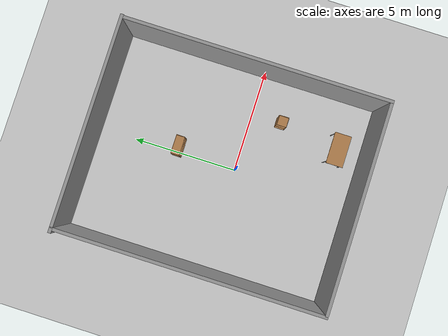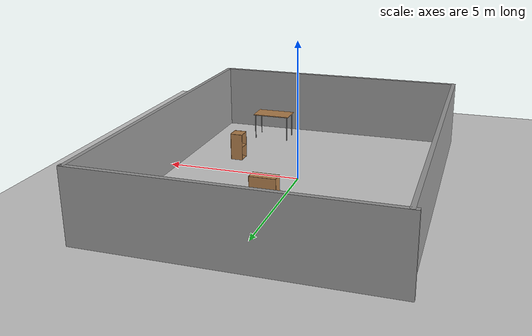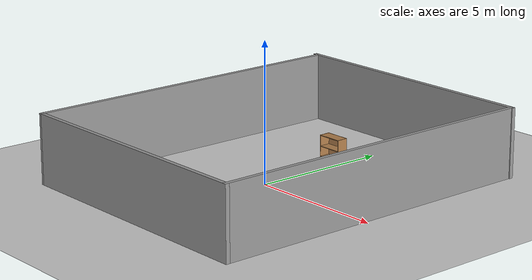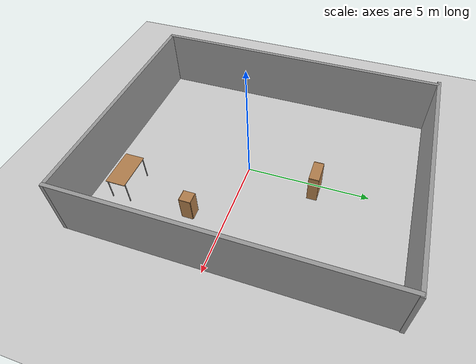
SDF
<sdf version="1.7">
 <world name="default">
  <light name="sun" type="directional">
   <pose>0 0 10 0 -0 0</pose>
   <diffuse>0.8 0.8 0.8 1</diffuse>
   <specular>0.2 0.2 0.2 1</specular>
   <attenuation>
    <range>1000</range>
    <constant>0.9</constant>
    <linear>0.01</linear>
    <quadratic>0.001</quadratic>
   </attenuation>
   <direction>-0.5 0.1 -0.9</direction>
   <spot><inner_angle>0</inner_angle><outer_angle>0</outer_angle><falloff>0</falloff></spot>
  </light>
  <model name="ground_plane">
   <static>1</static>
   <link name="link">
    <collision name="collision">
     <geometry><plane><normal>0 0 1</normal><size>100 100</size></plane></geometry>
     <surface>
      <contact><collide_bitmask>65535</collide_bitmask></contact>
      <friction><ode><mu>100</mu><mu2>50</mu2></ode></friction>
     </surface>
    </collision>
    <visual name="visual">
     <cast_shadows>0</cast_shadows>
     <geometry><plane><normal>0 0 1</normal><size>100 100</size></plane></geometry>
     <material>
      <script><uri>file://media/materials/scripts/gazebo.material</uri><name>Gazebo/Grey</name></script>
     </material>
    </visual>
   </link>
  </model>
  <gravity>0 0 -9.8</gravity>
  <magnetic_field>6e-06 2.3e-05 -4.2e-05</magnetic_field>
  <atmosphere type="adiabatic"/>
  <physics type="ode">
   <max_step_size>0.001</max_step_size>
   <real_time_factor>1</real_time_factor>
   <real_time_update_rate>1000</real_time_update_rate>
  </physics>
  <scene><ambient>0.4 0.4 0.4 1</ambient><background>0.7 0.7 0.7 1</background><shadows>1</shadows></scene>
  <audio><device>default</device></audio>
  <spherical_coordinates>
   <surface_model>EARTH_WGS84</surface_model>
   <latitude_deg>0</latitude_deg>
   <longitude_deg>0</longitude_deg>
   <elevation>0</elevation>
   <heading_deg>0</heading_deg>
  </spherical_coordinates>
  <model name="bookshelf">
   <static>1</static>
   <link name="link">
    <inertial><mass>1</mass></inertial>
    <collision name="back">
     <pose>0 0.005 0.6 0 -0 0</pose>
     <geometry><box><size>0.9 0.01 1.2</size></box></geometry>
    </collision>
    <visual name="visual1">
     <pose>0 0.005 0.6 0 -0 0</pose>
     <geometry><box><size>0.9 0.01 1.2</size></box></geometry>
     <material>
      <script><uri>file://media/materials/scripts/gazebo.material</uri><name>Gazebo/Wood</name></script>
     </material>
    </visual>
    <collision name="left_side">
     <pose>0.45 -0.195 0.6 0 -0 0</pose>
     <geometry><box><size>0.02 0.4 1.2</size></box></geometry>
    </collision>
    <visual name="visual2">
     <pose>0.45 -0.195 0.6 0 -0 0</pose>
     <geometry><box><size>0.02 0.4 1.2</size></box></geometry>
     <material>
      <script><uri>file://media/materials/scripts/gazebo.material</uri><name>Gazebo/Wood</name></script>
     </material>
    </visual>
    <collision name="right_side">
     <pose>-0.45 -0.195 0.6 0 -0 0</pose>
     <geometry><box><size>0.02 0.4 1.2</size></box></geometry>
    </collision>
    <visual name="visual3">
     <pose>-0.45 -0.195 0.6 0 -0 0</pose>
     <geometry><box><size>0.02 0.4 1.2</size></box></geometry>
     <material>
      <script><uri>file://media/materials/scripts/gazebo.material</uri><name>Gazebo/Wood</name></script>
     </material>
    </visual>
    <collision name="bottom">
     <pose>0 -0.195 0.03 0 -0 0</pose>
     <geometry><box><size>0.88 0.4 0.06</size></box></geometry>
    </collision>
    <visual name="visual4">
     <pose>0 -0.195 0.03 0 -0 0</pose>
     <geometry><box><size>0.88 0.4 0.06</size></box></geometry>
     <material>
      <script><uri>file://media/materials/scripts/gazebo.material</uri><name>Gazebo/Wood</name></script>
     </material>
    </visual>
    <collision name="top">
     <pose>0 -0.195 1.19 0 -0 0</pose>
     <geometry><box><size>0.88 0.4 0.02</size></box></geometry>
    </collision>
    <visual name="visual5">
     <pose>0 -0.195 1.19 0 -0 0</pose>
     <geometry><box><size>0.88 0.4 0.02</size></box></geometry>
     <material>
      <script><uri>file://media/materials/scripts/gazebo.material</uri><name>Gazebo/Wood</name></script>
     </material>
    </visual>
    <collision name="low_shelf">
     <pose>0 -0.195 0.43 0 -0 0</pose>
     <geometry><box><size>0.88 0.4 0.02</size></box></geometry>
    </collision>
    <visual name="visual6">
     <pose>0 -0.195 0.43 0 -0 0</pose>
     <geometry><box><size>0.88 0.4 0.02</size></box></geometry>
     <material>
      <script><uri>file://media/materials/scripts/gazebo.material</uri><name>Gazebo/Wood</name></script>
     </material>
    </visual>
    <collision name="high_shelf">
     <pose>0 -0.195 0.8 0 -0 0</pose>
     <geometry><box><size>0.88 0.4 0.02</size></box></geometry>
    </collision>
    <visual name="visual7">
     <pose>0 -0.195 0.8 0 -0 0</pose>
     <geometry><box><size>0.88 0.4 0.02</size></box></geometry>
     <material>
      <script><uri>file://media/materials/scripts/gazebo.material</uri><name>Gazebo/Wood</name></script>
     </material>
    </visual>
   </link>
   <pose>0.270001 3.05156 0 0 -0 0</pose>
  </model>
  <model name="cabinet">
   <static>1</static>
   <link name="cabinet_bottom_plate">
    <inertial>
     <pose>0 0 -1 0 -0 0</pose>
     <inertia><ixx>2.05</ixx><ixy>0</ixy><ixz>0</ixz><iyy>2.05</iyy><iyz>0</iyz><izz>2.05</izz></inertia>
     <mass>25</mass>
    </inertial>
    <collision name="cabinet_bottom_plate_geom">
     <pose>0 0 0.01 0 -0 0</pose>
     <geometry><box><size>0.45 0.45 0.02</size></box></geometry>
    </collision>
    <visual name="cabinet_bottom_plate_geom_visual">
     <pose>0 0 0.01 0 -0 0</pose>
     <geometry><box><size>0.45 0.45 0.02</size></box></geometry>
     <material>
      <script><uri>file://media/materials/scripts/gazebo.material</uri><name>Gazebo/Wood</name></script>
     </material>
    </visual>
    <collision name="cabinet_bottom_plate_geom_cabinet_back_plate">
     <pose>0.235 0 0.51 0 -0 0</pose>
     <geometry><box><size>0.02 0.45 1.02</size></box></geometry>
    </collision>
    <visual name="cabinet_bottom_plate_geom_cabinet_back_plate_visual">
     <pose>0.235 0 0.51 0 -0 0</pose>
     <geometry><box><size>0.02 0.45 1.02</size></box></geometry>
     <material>
      <script><uri>file://media/materials/scripts/gazebo.material</uri><name>Gazebo/Wood</name></script>
     </material>
    </visual>
    <collision name="cabinet_bottom_plate_geom_cabinet_left_plate">
     <pose>0 0.235 0.51 0 -0 0</pose>
     <geometry><box><size>0.45 0.02 1.02</size></box></geometry>
    </collision>
    <visual name="cabinet_bottom_plate_geom_cabinet_left_plate_visual">
     <pose>0 0.235 0.51 0 -0 0</pose>
     <geometry><box><size>0.45 0.02 1.02</size></box></geometry>
     <material>
      <script><uri>file://media/materials/scripts/gazebo.material</uri><name>Gazebo/Wood</name></script>
     </material>
    </visual>
    <collision name="cabinet_bottom_plate_geom_cabinet_middle_plate">
     <pose>0 0 0.51 0 -0 0</pose>
     <geometry><box><size>0.45 0.45 0.02</size></box></geometry>
    </collision>
    <visual name="cabinet_bottom_plate_geom_cabinet_middle_plate_visual">
     <pose>0 0 0.51 0 -0 0</pose>
     <geometry><box><size>0.45 0.45 0.02</size></box></geometry>
     <material>
      <script><uri>file://media/materials/scripts/gazebo.material</uri><name>Gazebo/Wood</name></script>
     </material>
    </visual>
    <collision name="cabinet_bottom_plate_geom_cabinet_right_plate">
     <pose>0 -0.235 0.51 0 -0 0</pose>
     <geometry><box><size>0.45 0.02 1.02</size></box></geometry>
    </collision>
    <visual name="cabinet_bottom_plate_geom_cabinet_right_plate_visual">
     <pose>0 -0.235 0.51 0 -0 0</pose>
     <geometry><box><size>0.45 0.02 1.02</size></box></geometry>
     <material>
      <script><uri>file://media/materials/scripts/gazebo.material</uri><name>Gazebo/Wood</name></script>
     </material>
    </visual>
    <collision name="cabinet_bottom_plate_geom_cabinet_top_plate">
     <pose>0 0 1.01 0 -0 0</pose>
     <geometry><box><size>0.45 0.45 0.02</size></box></geometry>
    </collision>
    <visual name="cabinet_bottom_plate_geom_cabinet_top_plate_visual">
     <pose>0 0 1.01 0 -0 0</pose>
     <geometry><box><size>0.45 0.45 0.02</size></box></geometry>
     <material>
      <script><uri>file://media/materials/scripts/gazebo.material</uri><name>Gazebo/Wood</name></script>
     </material>
    </visual>
   </link>
   <pose>2.81312 -1.42843 0 0 -0 0</pose>
  </model>
  <model name="table">
   <static>1</static>
   <link name="table">
    <collision name="table_surface">
     <pose>0 0 1 0 -0 0</pose>
     <geometry><box><size>1.5 0.8 0.03</size></box></geometry>
     <surface><friction><ode><mu>0.6</mu><mu2>0.6</mu2></ode></friction></surface>
    </collision>
    <visual name="table_visual1">
     <pose>0 0 1 0 -0 0</pose>
     <geometry><box><size>1.5 0.8 0.03</size></box></geometry>
     <material>
      <script><uri>file://media/materials/scripts/gazebo.material</uri><name>Gazebo/Wood</name></script>
     </material>
    </visual>
    <collision name="table_front_left_leg">
     <pose>0.68 0.38 0.5 0 -0 0</pose>
     <geometry><cylinder><radius>0.02</radius><length>1</length></cylinder></geometry>
    </collision>
    <visual name="table_visual2">
     <pose>0.68 0.38 0.5 0 -0 0</pose>
     <geometry><cylinder><radius>0.02</radius><length>1</length></cylinder></geometry>
     <material>
      <script><uri>file://media/materials/scripts/gazebo.material</uri><name>Gazebo/Grey</name></script>
     </material>
    </visual>
    <collision name="table_front_right_leg">
     <pose>0.68 -0.38 0.5 0 -0 0</pose>
     <geometry><cylinder><radius>0.02</radius><length>1</length></cylinder></geometry>
    </collision>
    <visual name="table_visual3">
     <pose>0.68 -0.38 0.5 0 -0 0</pose>
     <geometry><cylinder><radius>0.02</radius><length>1</length></cylinder></geometry>
     <material>
      <script><uri>file://media/materials/scripts/gazebo.material</uri><name>Gazebo/Grey</name></script>
     </material>
    </visual>
    <collision name="table_back_right_leg">
     <pose>-0.68 -0.38 0.5 0 -0 0</pose>
     <geometry><cylinder><radius>0.02</radius><length>1</length></cylinder></geometry>
    </collision>
    <visual name="table_visual4">
     <pose>-0.68 -0.38 0.5 0 -0 0</pose>
     <geometry><cylinder><radius>0.02</radius><length>1</length></cylinder></geometry>
     <material>
      <script><uri>file://media/materials/scripts/gazebo.material</uri><name>Gazebo/Grey</name></script>
     </material>
    </visual>
    <collision name="table_back_left_leg">
     <pose>-0.68 0.38 0.5 0 -0 0</pose>
     <geometry><cylinder><radius>0.02</radius><length>1</length></cylinder></geometry>
    </collision>
    <visual name="table_visual5">
     <pose>-0.68 0.38 0.5 0 -0 0</pose>
     <geometry><cylinder><radius>0.02</radius><length>1</length></cylinder></geometry>
     <material>
      <script><uri>file://media/materials/scripts/gazebo.material</uri><name>Gazebo/Grey</name></script>
     </material>
    </visual>
   </link>
   <pose>2.33781 -4.29186 0 0 -0 0</pose>
  </model>
  <model name="Building_1">
   <pose>-0.066403 0.607288 0 0 -0 0</pose>
   <link name="Wall_0">
    <collision name="Wall_0_Collision">
     <geometry><box><size>12.5 0.15 2.5</size></box></geometry>
     <pose>0 0 1.25 0 -0 0</pose>
    </collision>
    <visual name="Wall_0_Visual">
     <pose>0 0 1.25 0 -0 0</pose>
     <geometry><box><size>12.5 0.15 2.5</size></box></geometry>
     <material>
      <script><uri>file://media/materials/scripts/gazebo.material</uri><name>Gazebo/Grey</name></script>
      <ambient>1 1 1 1</ambient>
     </material>
     <meta><layer>0</layer></meta>
    </visual>
    <pose>-4.8106 -0.006896 0 0 -0 1.5708</pose>
   </link>
   <link name="Wall_4">
    <collision name="Wall_4_Collision">
     <geometry><box><size>10 0.15 2.5</size></box></geometry>
     <pose>0 0 1.25 0 -0 0</pose>
    </collision>
    <visual name="Wall_4_Visual">
     <pose>0 0 1.25 0 -0 0</pose>
     <geometry><box><size>10 0.15 2.5</size></box></geometry>
     <material>
      <script><uri>file://media/materials/scripts/gazebo.material</uri><name>Gazebo/Grey</name></script>
      <ambient>1 1 1 1</ambient>
     </material>
     <meta><layer>0</layer></meta>
    </visual>
    <pose>-0 6.18946 0 0 -0 0</pose>
   </link>
   <link name="Wall_6">
    <collision name="Wall_6_Collision">
     <geometry><box><size>12.5 0.15 2.5</size></box></geometry>
     <pose>0 0 1.25 0 -0 0</pose>
    </collision>
    <visual name="Wall_6_Visual">
     <pose>0 0 1.25 0 -0 0</pose>
     <geometry><box><size>12.5 0.15 2.5</size></box></geometry>
     <material>
      <script><uri>file://media/materials/scripts/gazebo.material</uri><name>Gazebo/Grey</name></script>
      <ambient>1 1 1 1</ambient>
     </material>
     <meta><layer>0</layer></meta>
    </visual>
    <pose>4.89116 -0.01446 0 0 -0 -1.5708</pose>
   </link>
   <link name="Wall_7">
    <collision name="Wall_7_Collision">
     <geometry><box><size>9.75 0.15 2.5</size></box></geometry>
     <pose>0 0 1.25 0 -0 0</pose>
    </collision>
    <visual name="Wall_7_Visual">
     <pose>0 0 1.25 0 -0 0</pose>
     <geometry><box><size>9.75 0.15 2.5</size></box></geometry>
     <material>
      <script><uri>file://media/materials/scripts/gazebo.material</uri><name>Gazebo/Grey</name></script>
      <ambient>1 1 1 1</ambient>
     </material>
     <meta><layer>0</layer></meta>
    </visual>
    <pose>0.09116 -6.18946 0 0 -0 3.14159</pose>
   </link>
   <static>1</static>
  </model>
 </world>
</sdf>
